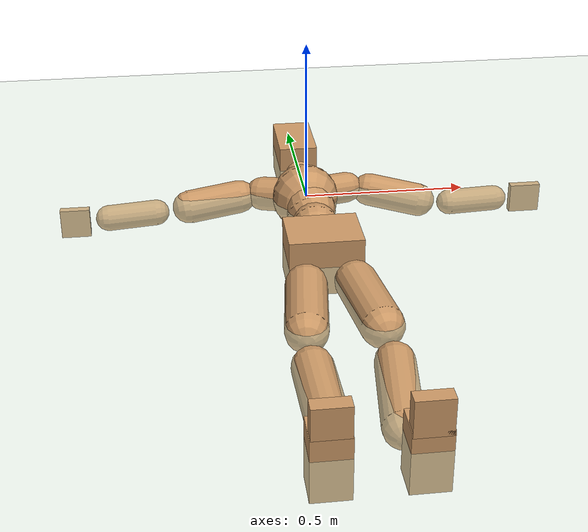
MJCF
<mujoco model="humanoid">
  <compiler coordinate="local"/>
  <default>
    <joint damping="0.0" armature="0.01" stiffness="0.0" limited="true"/>
    <geom conaffinity="1" condim="3" contype="7" margin="0.001" rgba="0.8 0.6 .4 1"/>
  </default>
  <asset>
    <texture type="skybox" builtin="gradient" rgb1=".4 .5 .6" rgb2="0 0 0" width="100" height="100"/>
    <texture builtin="flat" height="1278" mark="cross" markrgb="1 1 1" name="texgeom" random="0.01" rgb1="0.8 0.6 0.4" rgb2="0.8 0.6 0.4" type="cube" width="127"/>
    <texture builtin="checker" height="100" name="texplane" rgb1="0 0 0" rgb2="0.8 0.8 0.8" type="2d" width="100"/>
    <material name="MatPlane" reflectance="0.5" shininess="1" specular="1" texrepeat="60 60" texture="texplane"/>
    <material name="geom" texture="texgeom" texuniform="true"/>
  </asset>
  <worldbody>
    <light cutoff="100" diffuse="1 1 1" dir="-0 0 -1.3" directional="true" exponent="1" pos="0 0 1.3" specular=".1 .1 .1"/>
    <geom conaffinity="1" condim="3" name="floor" pos="0 0 0" rgba="0.8 0.9 0.8 1" size="100 100 .2" type="plane" material="MatPlane"/>
    <body name="Pelvis" pos="0.0031 -0.3514 0.012">
      <freejoint name="Pelvis"/>
      <geom type="box" pos="-0.0031 -0.0215 -0.0168" size="0.1079 0.0846 0.084" quat="1.0000 0.0000 0.0000 0.0000" density="3021.964159" name="Pelvis"/>
      <body name="L_Hip" pos="0.0582 -0.0928 -0.026">
        <joint name="L_Hip_x" type="hinge" pos="0 0 0" axis="1 0 0" user="250 2.5 1 500 10 2" armature="0.01" range="-180.0000 180.0000" damping="0" stiffness="0"/>
        <joint name="L_Hip_y" type="hinge" pos="0 0 0" axis="0 1 0" user="250 2.5 1 500 10 2" armature="0.01" range="-180.0000 180.0000" damping="0" stiffness="0"/>
        <joint name="L_Hip_z" type="hinge" pos="0 0 0" axis="0 0 1" user="250 2.5 1 500 10 2" armature="0.01" range="-180.0000 180.0000" damping="0" stiffness="0"/>
        <geom type="capsule" contype="1" conaffinity="1" density="2040.816327" fromto="0.0109 -0.0758 -0.0019 0.0438 -0.3030 -0.0075" size="0.0605" name="L_Hip"/>
        <body name="L_Knee" pos="0.0547 -0.3788 -0.0094">
          <joint name="L_Knee_x" type="hinge" pos="0 0 0" axis="1 0 0" user="250 2.5 1 500 10 2" armature="0.01" range="-180.0000 180.0000" damping="0" stiffness="0"/>
          <joint name="L_Knee_y" type="hinge" pos="0 0 0" axis="0 1 0" user="250 2.5 1 500 10 2" armature="0.01" range="-180.0000 180.0000" damping="0" stiffness="0"/>
          <joint name="L_Knee_z" type="hinge" pos="0 0 0" axis="0 0 1" user="250 2.5 1 500 10 2" armature="0.01" range="-180.0000 180.0000" damping="0" stiffness="0"/>
          <geom type="capsule" contype="1" conaffinity="1" density="1234.567901" fromto="-0.0087 -0.0806 -0.0064 -0.0348 -0.3224 -0.0255" size="0.0533" name="L_Knee"/>
          <body name="L_Ankle" pos="-0.0435 -0.4031 -0.0319">
            <joint name="L_Ankle_x" type="hinge" pos="0 0 0" axis="1 0 0" user="150 2.5 1 500 10 2" armature="0.01" range="-180.0000 180.0000" damping="0" stiffness="0"/>
            <joint name="L_Ankle_y" type="hinge" pos="0 0 0" axis="0 1 0" user="150 2.5 1 500 10 2" armature="0.01" range="-180.0000 180.0000" damping="0" stiffness="0"/>
            <joint name="L_Ankle_z" type="hinge" pos="0 0 0" axis="0 0 1" user="150 2.5 1 500 10 2" armature="0.01" range="-180.0000 180.0000" damping="0" stiffness="0"/>
            <geom type="box" pos="0.0407 -0.0287 0.0232" size="0.0498 0.0464 0.0857" quat="1.0000 0.0000 0.0000 0.0000" density="445.819015" name="L_Ankle"/>
            <body name="L_Toe" pos="0.0473 -0.058 0.1182">
              <joint name="L_Toe_x" type="hinge" pos="0 0 0" axis="1 0 0" user="150 1 1 500 1 1" armature="0.01" range="-180.0000 180.0000" damping="0" stiffness="0"/>
              <joint name="L_Toe_y" type="hinge" pos="0 0 0" axis="0 1 0" user="150 1 1 500 1 1" armature="0.01" range="-180.0000 180.0000" damping="0" stiffness="0"/>
              <joint name="L_Toe_z" type="hinge" pos="0 0 0" axis="0 0 1" user="150 1 1 500 1 1" armature="0.01" range="-180.0000 180.0000" damping="0" stiffness="0"/>
              <geom type="box" pos="-0.0065 0.0034 0.0256" size="0.0478 0.0205 0.0495" quat="1.0000 0.0000 0.0000 0.0000" density="421.767577" name="L_Toe"/>
            </body>
          </body>
        </body>
      </body>
      <body name="R_Hip" pos="-0.0633 -0.1039 -0.0213">
        <joint name="R_Hip_x" type="hinge" pos="0 0 0" axis="1 0 0" user="250 2.5 1 500 10 2" armature="0.01" range="-180.0000 180.0000" damping="0" stiffness="0"/>
        <joint name="R_Hip_y" type="hinge" pos="0 0 0" axis="0 1 0" user="250 2.5 1 500 10 2" armature="0.01" range="-180.0000 180.0000" damping="0" stiffness="0"/>
        <joint name="R_Hip_z" type="hinge" pos="0 0 0" axis="0 0 1" user="250 2.5 1 500 10 2" armature="0.01" range="-180.0000 180.0000" damping="0" stiffness="0"/>
        <geom type="capsule" contype="1" conaffinity="1" density="2040.816327" fromto="-0.0088 -0.0725 -0.0034 -0.0354 -0.2899 -0.0135" size="0.0598" name="R_Hip"/>
        <body name="R_Knee" pos="-0.0442 -0.3624 -0.0168">
          <joint name="R_Knee_x" type="hinge" pos="0 0 0" axis="1 0 0" user="250 2.5 1 500 10 2" armature="0.01" range="-180.0000 180.0000" damping="0" stiffness="0"/>
          <joint name="R_Knee_y" type="hinge" pos="0 0 0" axis="0 1 0" user="250 2.5 1 500 10 2" armature="0.01" range="-180.0000 180.0000" damping="0" stiffness="0"/>
          <joint name="R_Knee_z" type="hinge" pos="0 0 0" axis="0 0 1" user="250 2.5 1 500 10 2" armature="0.01" range="-180.0000 180.0000" damping="0" stiffness="0"/>
          <geom type="capsule" contype="1" conaffinity="1" density="1234.567901" fromto="0.0031 -0.0821 -0.0040 0.0123 -0.3286 -0.0162" size="0.0551" name="R_Knee"/>
          <body name="R_Ankle" pos="0.0154 -0.4107 -0.0202">
            <joint name="R_Ankle_x" type="hinge" pos="0 0 0" axis="1 0 0" user="150 1 1 500 10 2" armature="0.01" range="-180.0000 180.0000" damping="0" stiffness="0"/>
            <joint name="R_Ankle_y" type="hinge" pos="0 0 0" axis="0 1 0" user="150 1 1 500 10 2" armature="0.01" range="-180.0000 180.0000" damping="0" stiffness="0"/>
            <joint name="R_Ankle_z" type="hinge" pos="0 0 0" axis="0 0 1" user="150 1 1 500 10 2" armature="0.01" range="-180.0000 180.0000" damping="0" stiffness="0"/>
            <geom type="box" pos="-0.0243 -0.0263 0.0142" size="0.0498 0.0464 0.0857" quat="1.0000 0.0000 0.0000 0.0000" density="445.807856" name="R_Ankle"/>
            <body name="R_Toe" pos="-0.0388 -0.0583 0.119">
              <joint name="R_Toe_x" type="hinge" pos="0 0 0" axis="1 0 0" user="150 1 1 500 1 1" armature="0.01" range="-180.0000 180.0000" damping="0" stiffness="0"/>
              <joint name="R_Toe_y" type="hinge" pos="0 0 0" axis="0 1 0" user="150 1 1 500 1 1" armature="0.01" range="-180.0000 180.0000" damping="0" stiffness="0"/>
              <joint name="R_Toe_z" type="hinge" pos="0 0 0" axis="0 0 1" user="150 1 1 500 1 1" armature="0.01" range="-180.0000 180.0000" damping="0" stiffness="0"/>
              <geom type="box" pos="0.0145 0.0062 0.0158" size="0.0478 0.0205 0.0495" quat="1.0000 0.0000 0.0000 0.0000" density="421.7641" name="R_Toe"/>
            </body>
          </body>
        </body>
      </body>
      <body name="Torso" pos="-0.0028 0.1099 -0.0276">
        <joint name="Torso_x" type="hinge" pos="0 0 0" axis="1 0 0" user="500 5 1 500 10 2" armature="0.01" range="-180.0000 180.0000" damping="0" stiffness="0"/>
        <joint name="Torso_y" type="hinge" pos="0 0 0" axis="0 1 0" user="500 5 1 500 10 2" armature="0.01" range="-180.0000 180.0000" damping="0" stiffness="0"/>
        <joint name="Torso_z" type="hinge" pos="0 0 0" axis="0 0 1" user="500 5 1 500 10 2" armature="0.01" range="-180.0000 180.0000" damping="0" stiffness="0"/>
        <geom type="capsule" contype="1" conaffinity="1" density="2040.816327" fromto="0.0043 0.0593 -0.0027 0.0052 0.0725 -0.0033" size="0.0719" name="Torso"/>
        <body name="Spine" pos="0.0094 0.1319 -0.0059">
          <joint name="Spine_x" type="hinge" pos="0 0 0" axis="1 0 0" user="500 5 1 500 10 2" armature="0.01" range="-180.0000 180.0000" damping="0" stiffness="0"/>
          <joint name="Spine_y" type="hinge" pos="0 0 0" axis="0 1 0" user="500 5 1 500 10 2" armature="0.01" range="-180.0000 180.0000" damping="0" stiffness="0"/>
          <joint name="Spine_z" type="hinge" pos="0 0 0" axis="0 0 1" user="500 5 1 500 10 2" armature="0.01" range="-180.0000 180.0000" damping="0" stiffness="0"/>
          <geom type="capsule" contype="1" conaffinity="1" density="2040.816327" fromto="-0.0051 0.0235 0.0128 -0.0062 0.0287 0.0156" size="0.076" name="Spine"/>
          <body name="Chest" pos="-0.0113 0.0522 0.0284">
            <joint name="Chest_x" type="hinge" pos="0 0 0" axis="1 0 0" user="500 5 1 500 10 2" armature="0.01" range="-180.0000 180.0000" damping="0" stiffness="0"/>
            <joint name="Chest_y" type="hinge" pos="0 0 0" axis="0 1 0" user="500 5 1 500 10 2" armature="0.01" range="-180.0000 180.0000" damping="0" stiffness="0"/>
            <joint name="Chest_z" type="hinge" pos="0 0 0" axis="0 0 1" user="500 5 1 500 10 2" armature="0.01" range="-180.0000 180.0000" damping="0" stiffness="0"/>
            <geom type="capsule" contype="1" conaffinity="1" density="2040.816327" fromto="-0.0020 0.0502 -0.0078 -0.0025 0.0613 -0.0096" size="0.1028" name="Chest"/>
            <body name="Neck" pos="-0.0122 0.1652 -0.0316">
              <joint name="Neck_x" type="hinge" pos="0 0 0" axis="1 0 0" user="150 1 1 250 50 4" armature="0.01" range="-180.0000 180.0000" damping="0" stiffness="0"/>
              <joint name="Neck_y" type="hinge" pos="0 0 0" axis="0 1 0" user="150 1 1 250 50 4" armature="0.01" range="-180.0000 180.0000" damping="0" stiffness="0"/>
              <joint name="Neck_z" type="hinge" pos="0 0 0" axis="0 0 1" user="150 1 1 250 50 4" armature="0.01" range="-180.0000 180.0000" damping="0" stiffness="0"/>
              <geom type="capsule" contype="1" conaffinity="1" density="1000" fromto="0.0050 0.0321 0.0041 0.0198 0.1284 0.0166" size="0.0419" name="Neck"/>
              <body name="Head" pos="0.0248 0.1605 0.0207">
                <joint name="Head_x" type="hinge" pos="0 0 0" axis="1 0 0" user="150 1 1 250 50 4" armature="0.01" range="-180.0000 180.0000" damping="0" stiffness="0"/>
                <joint name="Head_y" type="hinge" pos="0 0 0" axis="0 1 0" user="150 1 1 250 50 4" armature="0.01" range="-180.0000 180.0000" damping="0" stiffness="0"/>
                <joint name="Head_z" type="hinge" pos="0 0 0" axis="0 0 1" user="150 1 1 250 50 4" armature="0.01" range="-180.0000 180.0000" damping="0" stiffness="0"/>
                <geom type="box" pos="-0.0111 0.0414 -0.0008" size="0.0609 0.1096 0.0797" quat="1.0000 0.0000 0.0000 0.0000" density="1018.531753" name="Head"/>
              </body>
            </body>
            <body name="L_Thorax" pos="0.0464 0.0849 -0.0072">
              <joint name="L_Thorax_x" type="hinge" pos="0 0 0" axis="1 0 0" user="200 2 1 500 50 4" armature="0.01" range="-180.0000 180.0000" damping="0" stiffness="0"/>
              <joint name="L_Thorax_y" type="hinge" pos="0 0 0" axis="0 1 0" user="200 2 1 500 50 4" armature="0.01" range="-180.0000 180.0000" damping="0" stiffness="0"/>
              <joint name="L_Thorax_z" type="hinge" pos="0 0 0" axis="0 0 1" user="200 2 1 500 50 4" armature="0.01" range="-180.0000 180.0000" damping="0" stiffness="0"/>
              <geom type="capsule" contype="1" conaffinity="1" density="1000" fromto="0.0238 0.0115 -0.0031 0.0954 0.0462 -0.0124" size="0.0488" name="L_Thorax"/>
              <body name="L_Shoulder" pos="0.1192 0.0577 -0.0155">
                <joint name="L_Shoulder_x" type="hinge" pos="0 0 0" axis="1 0 0" user="200 2 1 500 50 4" armature="0.01" range="-180.0000 180.0000" damping="0" stiffness="0"/>
                <joint name="L_Shoulder_y" type="hinge" pos="0 0 0" axis="0 1 0" user="200 2 1 500 50 4" armature="0.01" range="-180.0000 180.0000" damping="0" stiffness="0"/>
                <joint name="L_Shoulder_z" type="hinge" pos="0 0 0" axis="0 0 1" user="200 2 1 500 50 4" armature="0.01" range="-180.0000 180.0000" damping="0" stiffness="0"/>
                <geom type="capsule" contype="1" conaffinity="1" density="1000" fromto="0.0508 -0.0144 -0.0085 0.2033 -0.0577 -0.0340" size="0.0522" name="L_Shoulder"/>
                <body name="L_Elbow" pos="0.2541 -0.0722 -0.0425">
                  <joint name="L_Elbow_x" type="hinge" pos="0 0 0" axis="1 0 0" user="150 1 1 150 10 2" armature="0.01" range="-720.0000 720.0000" damping="0" stiffness="0"/>
                  <joint name="L_Elbow_y" type="hinge" pos="0 0 0" axis="0 1 0" user="150 1 1 150 10 2" armature="0.01" range="-720.0000 720.0000" damping="0" stiffness="0"/>
                  <joint name="L_Elbow_z" type="hinge" pos="0 0 0" axis="0 0 1" user="150 1 1 150 10 2" armature="0.01" range="-720.0000 720.0000" damping="0" stiffness="0"/>
                  <geom type="capsule" contype="1" conaffinity="1" density="1000" fromto="0.0504 0.0046 -0.0005 0.2016 0.0186 -0.0020" size="0.0401" name="L_Elbow"/>
                  <body name="L_Wrist" pos="0.252 0.0232 -0.0025">
                    <joint name="L_Wrist_x" type="hinge" pos="0 0 0" axis="1 0 0" user="100 1 1 150 1 1" armature="0.01" range="-180.0000 180.0000" damping="0" stiffness="0"/>
                    <joint name="L_Wrist_y" type="hinge" pos="0 0 0" axis="0 1 0" user="100 1 1 150 1 1" armature="0.01" range="-180.0000 180.0000" damping="0" stiffness="0"/>
                    <joint name="L_Wrist_z" type="hinge" pos="0 0 0" axis="0 0 1" user="100 1 1 150 1 1" armature="0.01" range="-180.0000 180.0000" damping="0" stiffness="0"/>
                    <geom type="box" pos="0.0523 -0.0013 -0.0031" size="0.0484 0.0122 0.046" quat="1.0000 0.0000 0.0000 0.0000" density="1198.335963" name="L_Wrist"/>
                  </body>
                </body>
              </body>
            </body>
            <body name="R_Thorax" pos="-0.0477 0.0843 -0.0134">
              <joint name="R_Thorax_x" type="hinge" pos="0 0 0" axis="1 0 0" user="200 2 1 150 10 2" armature="0.01" range="-180.0000 180.0000" damping="0" stiffness="0"/>
              <joint name="R_Thorax_y" type="hinge" pos="0 0 0" axis="0 1 0" user="200 2 1 150 10 2" armature="0.01" range="-180.0000 180.0000" damping="0" stiffness="0"/>
              <joint name="R_Thorax_z" type="hinge" pos="0 0 0" axis="0 0 1" user="200 2 1 150 10 2" armature="0.01" range="-180.0000 180.0000" damping="0" stiffness="0"/>
              <geom type="capsule" contype="1" conaffinity="1" density="1000" fromto="-0.0205 0.0107 -0.0025 -0.0821 0.0428 -0.0101" size="0.0536" name="R_Thorax"/>
              <body name="R_Shoulder" pos="-0.1026 0.0535 -0.0127">
                <joint name="R_Shoulder_x" type="hinge" pos="0 0 0" axis="1 0 0" user="200 2 1 250 10 2" armature="0.01" range="-180.0000 180.0000" damping="0" stiffness="0"/>
                <joint name="R_Shoulder_y" type="hinge" pos="0 0 0" axis="0 1 0" user="200 2 1 250 10 2" armature="0.01" range="-180.0000 180.0000" damping="0" stiffness="0"/>
                <joint name="R_Shoulder_z" type="hinge" pos="0 0 0" axis="0 0 1" user="200 2 1 250 10 2" armature="0.01" range="-180.0000 180.0000" damping="0" stiffness="0"/>
                <geom type="capsule" contype="1" conaffinity="1" density="1000" fromto="-0.0542 -0.0073 -0.0053 -0.2169 -0.0292 -0.0212" size="0.0521" name="R_Shoulder"/>
                <body name="R_Elbow" pos="-0.2711 -0.0365 -0.0265">
                  <joint name="R_Elbow_x" type="hinge" pos="0 0 0" axis="1 0 0" user="150 1 1 150 10 2" armature="0.01" range="-720.0000 720.0000" damping="0" stiffness="0"/>
                  <joint name="R_Elbow_y" type="hinge" pos="0 0 0" axis="0 1 0" user="150 1 1 150 10 2" armature="0.01" range="-720.0000 720.0000" damping="0" stiffness="0"/>
                  <joint name="R_Elbow_z" type="hinge" pos="0 0 0" axis="0 0 1" user="150 1 1 150 10 2" armature="0.01" range="-720.0000 720.0000" damping="0" stiffness="0"/>
                  <geom type="capsule" contype="1" conaffinity="1" density="1000" fromto="-0.0499 -0.0009 -0.0031 -0.1994 -0.0036 -0.0123" size="0.0404" name="R_Elbow"/>
                  <body name="R_Wrist" pos="-0.2493 -0.0045 -0.0153">
                    <joint name="R_Wrist_x" type="hinge" pos="0 0 0" axis="1 0 0" user="100 1 1 150 1 1" armature="0.01" range="-180.0000 180.0000" damping="0" stiffness="0"/>
                    <joint name="R_Wrist_y" type="hinge" pos="0 0 0" axis="0 1 0" user="100 1 1 150 1 1" armature="0.01" range="-180.0000 180.0000" damping="0" stiffness="0"/>
                    <joint name="R_Wrist_z" type="hinge" pos="0 0 0" axis="0 0 1" user="100 1 1 150 1 1" armature="0.01" range="-180.0000 180.0000" damping="0" stiffness="0"/>
                    <geom type="box" pos="-0.0537 -0.0044 -0.0029" size="0.0454 0.0122 0.046" quat="1.0000 0.0000 0.0000 0.0000" density="1230.822844" name="R_Wrist"/>
                  </body>
                </body>
              </body>
            </body>
          </body>
        </body>
      </body>
    </body>
  </worldbody>
  <actuator>
    <motor name="L_Hip_x" joint="L_Hip_x" gear="1"/>
    <motor name="L_Hip_y" joint="L_Hip_y" gear="1"/>
    <motor name="L_Hip_z" joint="L_Hip_z" gear="1"/>
    <motor name="L_Knee_x" joint="L_Knee_x" gear="1"/>
    <motor name="L_Knee_y" joint="L_Knee_y" gear="1"/>
    <motor name="L_Knee_z" joint="L_Knee_z" gear="1"/>
    <motor name="L_Ankle_x" joint="L_Ankle_x" gear="1"/>
    <motor name="L_Ankle_y" joint="L_Ankle_y" gear="1"/>
    <motor name="L_Ankle_z" joint="L_Ankle_z" gear="1"/>
    <motor name="L_Toe_x" joint="L_Toe_x" gear="1"/>
    <motor name="L_Toe_y" joint="L_Toe_y" gear="1"/>
    <motor name="L_Toe_z" joint="L_Toe_z" gear="1"/>
    <motor name="R_Hip_x" joint="R_Hip_x" gear="1"/>
    <motor name="R_Hip_y" joint="R_Hip_y" gear="1"/>
    <motor name="R_Hip_z" joint="R_Hip_z" gear="1"/>
    <motor name="R_Knee_x" joint="R_Knee_x" gear="1"/>
    <motor name="R_Knee_y" joint="R_Knee_y" gear="1"/>
    <motor name="R_Knee_z" joint="R_Knee_z" gear="1"/>
    <motor name="R_Ankle_x" joint="R_Ankle_x" gear="1"/>
    <motor name="R_Ankle_y" joint="R_Ankle_y" gear="1"/>
    <motor name="R_Ankle_z" joint="R_Ankle_z" gear="1"/>
    <motor name="R_Toe_x" joint="R_Toe_x" gear="1"/>
    <motor name="R_Toe_y" joint="R_Toe_y" gear="1"/>
    <motor name="R_Toe_z" joint="R_Toe_z" gear="1"/>
    <motor name="Torso_x" joint="Torso_x" gear="1"/>
    <motor name="Torso_y" joint="Torso_y" gear="1"/>
    <motor name="Torso_z" joint="Torso_z" gear="1"/>
    <motor name="Spine_x" joint="Spine_x" gear="1"/>
    <motor name="Spine_y" joint="Spine_y" gear="1"/>
    <motor name="Spine_z" joint="Spine_z" gear="1"/>
    <motor name="Chest_x" joint="Chest_x" gear="1"/>
    <motor name="Chest_y" joint="Chest_y" gear="1"/>
    <motor name="Chest_z" joint="Chest_z" gear="1"/>
    <motor name="Neck_x" joint="Neck_x" gear="1"/>
    <motor name="Neck_y" joint="Neck_y" gear="1"/>
    <motor name="Neck_z" joint="Neck_z" gear="1"/>
    <motor name="Head_x" joint="Head_x" gear="1"/>
    <motor name="Head_y" joint="Head_y" gear="1"/>
    <motor name="Head_z" joint="Head_z" gear="1"/>
    <motor name="L_Thorax_x" joint="L_Thorax_x" gear="1"/>
    <motor name="L_Thorax_y" joint="L_Thorax_y" gear="1"/>
    <motor name="L_Thorax_z" joint="L_Thorax_z" gear="1"/>
    <motor name="L_Shoulder_x" joint="L_Shoulder_x" gear="1"/>
    <motor name="L_Shoulder_y" joint="L_Shoulder_y" gear="1"/>
    <motor name="L_Shoulder_z" joint="L_Shoulder_z" gear="1"/>
    <motor name="L_Elbow_x" joint="L_Elbow_x" gear="1"/>
    <motor name="L_Elbow_y" joint="L_Elbow_y" gear="1"/>
    <motor name="L_Elbow_z" joint="L_Elbow_z" gear="1"/>
    <motor name="L_Wrist_x" joint="L_Wrist_x" gear="1"/>
    <motor name="L_Wrist_y" joint="L_Wrist_y" gear="1"/>
    <motor name="L_Wrist_z" joint="L_Wrist_z" gear="1"/>
    <motor name="R_Thorax_x" joint="R_Thorax_x" gear="1"/>
    <motor name="R_Thorax_y" joint="R_Thorax_y" gear="1"/>
    <motor name="R_Thorax_z" joint="R_Thorax_z" gear="1"/>
    <motor name="R_Shoulder_x" joint="R_Shoulder_x" gear="1"/>
    <motor name="R_Shoulder_y" joint="R_Shoulder_y" gear="1"/>
    <motor name="R_Shoulder_z" joint="R_Shoulder_z" gear="1"/>
    <motor name="R_Elbow_x" joint="R_Elbow_x" gear="1"/>
    <motor name="R_Elbow_y" joint="R_Elbow_y" gear="1"/>
    <motor name="R_Elbow_z" joint="R_Elbow_z" gear="1"/>
    <motor name="R_Wrist_x" joint="R_Wrist_x" gear="1"/>
    <motor name="R_Wrist_y" joint="R_Wrist_y" gear="1"/>
    <motor name="R_Wrist_z" joint="R_Wrist_z" gear="1"/>
  </actuator>
  <contact>
    <exclude body1="Torso" body2="Chest"/>
    <exclude body1="Head" body2="Chest"/>
    <exclude body1="R_Knee" body2="R_Toe"/>
    <exclude body1="R_Knee" body2="L_Ankle"/>
    <exclude body1="R_Knee" body2="L_Toe"/>
    <exclude body1="L_Knee" body2="L_Toe"/>
    <exclude body1="L_Knee" body2="R_Ankle"/>
    <exclude body1="L_Knee" body2="R_Toe"/>
    <exclude body1="L_Shoulder" body2="Chest"/>
    <exclude body1="R_Shoulder" body2="Chest"/>
  </contact>
  <sensor>
    <framelinvel name="sensor_Pelvis_framelinvel" objtype="xbody" objname="Pelvis"/>
    <framelinvel name="sensor_L_Hip_framelinvel" objtype="xbody" objname="L_Hip"/>
    <framelinvel name="sensor_L_Knee_framelinvel" objtype="xbody" objname="L_Knee"/>
    <framelinvel name="sensor_L_Ankle_framelinvel" objtype="xbody" objname="L_Ankle"/>
    <framelinvel name="sensor_L_Toe_framelinvel" objtype="xbody" objname="L_Toe"/>
    <framelinvel name="sensor_R_Hip_framelinvel" objtype="xbody" objname="R_Hip"/>
    <framelinvel name="sensor_R_Knee_framelinvel" objtype="xbody" objname="R_Knee"/>
    <framelinvel name="sensor_R_Ankle_framelinvel" objtype="xbody" objname="R_Ankle"/>
    <framelinvel name="sensor_R_Toe_framelinvel" objtype="xbody" objname="R_Toe"/>
    <framelinvel name="sensor_Torso_framelinvel" objtype="xbody" objname="Torso"/>
    <framelinvel name="sensor_Spine_framelinvel" objtype="xbody" objname="Spine"/>
    <framelinvel name="sensor_Chest_framelinvel" objtype="xbody" objname="Chest"/>
    <framelinvel name="sensor_Neck_framelinvel" objtype="xbody" objname="Neck"/>
    <framelinvel name="sensor_Head_framelinvel" objtype="xbody" objname="Head"/>
    <framelinvel name="sensor_L_Thorax_framelinvel" objtype="xbody" objname="L_Thorax"/>
    <framelinvel name="sensor_L_Shoulder_framelinvel" objtype="xbody" objname="L_Shoulder"/>
    <framelinvel name="sensor_L_Elbow_framelinvel" objtype="xbody" objname="L_Elbow"/>
    <framelinvel name="sensor_L_Wrist_framelinvel" objtype="xbody" objname="L_Wrist"/>
    <framelinvel name="sensor_R_Thorax_framelinvel" objtype="xbody" objname="R_Thorax"/>
    <framelinvel name="sensor_R_Shoulder_framelinvel" objtype="xbody" objname="R_Shoulder"/>
    <framelinvel name="sensor_R_Elbow_framelinvel" objtype="xbody" objname="R_Elbow"/>
    <framelinvel name="sensor_R_Wrist_framelinvel" objtype="xbody" objname="R_Wrist"/>
    <frameangvel name="sensor_Pelvis_frameangvel" objtype="xbody" objname="Pelvis"/>
    <frameangvel name="sensor_L_Hip_frameangvel" objtype="xbody" objname="L_Hip"/>
    <frameangvel name="sensor_L_Knee_frameangvel" objtype="xbody" objname="L_Knee"/>
    <frameangvel name="sensor_L_Ankle_frameangvel" objtype="xbody" objname="L_Ankle"/>
    <frameangvel name="sensor_L_Toe_frameangvel" objtype="xbody" objname="L_Toe"/>
    <frameangvel name="sensor_R_Hip_frameangvel" objtype="xbody" objname="R_Hip"/>
    <frameangvel name="sensor_R_Knee_frameangvel" objtype="xbody" objname="R_Knee"/>
    <frameangvel name="sensor_R_Ankle_frameangvel" objtype="xbody" objname="R_Ankle"/>
    <frameangvel name="sensor_R_Toe_frameangvel" objtype="xbody" objname="R_Toe"/>
    <frameangvel name="sensor_Torso_frameangvel" objtype="xbody" objname="Torso"/>
    <frameangvel name="sensor_Spine_frameangvel" objtype="xbody" objname="Spine"/>
    <frameangvel name="sensor_Chest_frameangvel" objtype="xbody" objname="Chest"/>
    <frameangvel name="sensor_Neck_frameangvel" objtype="xbody" objname="Neck"/>
    <frameangvel name="sensor_Head_frameangvel" objtype="xbody" objname="Head"/>
    <frameangvel name="sensor_L_Thorax_frameangvel" objtype="xbody" objname="L_Thorax"/>
    <frameangvel name="sensor_L_Shoulder_frameangvel" objtype="xbody" objname="L_Shoulder"/>
    <frameangvel name="sensor_L_Elbow_frameangvel" objtype="xbody" objname="L_Elbow"/>
    <frameangvel name="sensor_L_Wrist_frameangvel" objtype="xbody" objname="L_Wrist"/>
    <frameangvel name="sensor_R_Thorax_frameangvel" objtype="xbody" objname="R_Thorax"/>
    <frameangvel name="sensor_R_Shoulder_frameangvel" objtype="xbody" objname="R_Shoulder"/>
    <frameangvel name="sensor_R_Elbow_frameangvel" objtype="xbody" objname="R_Elbow"/>
    <frameangvel name="sensor_R_Wrist_frameangvel" objtype="xbody" objname="R_Wrist"/>
  </sensor>
  <size njmax="700" nconmax="700"/>
</mujoco>
